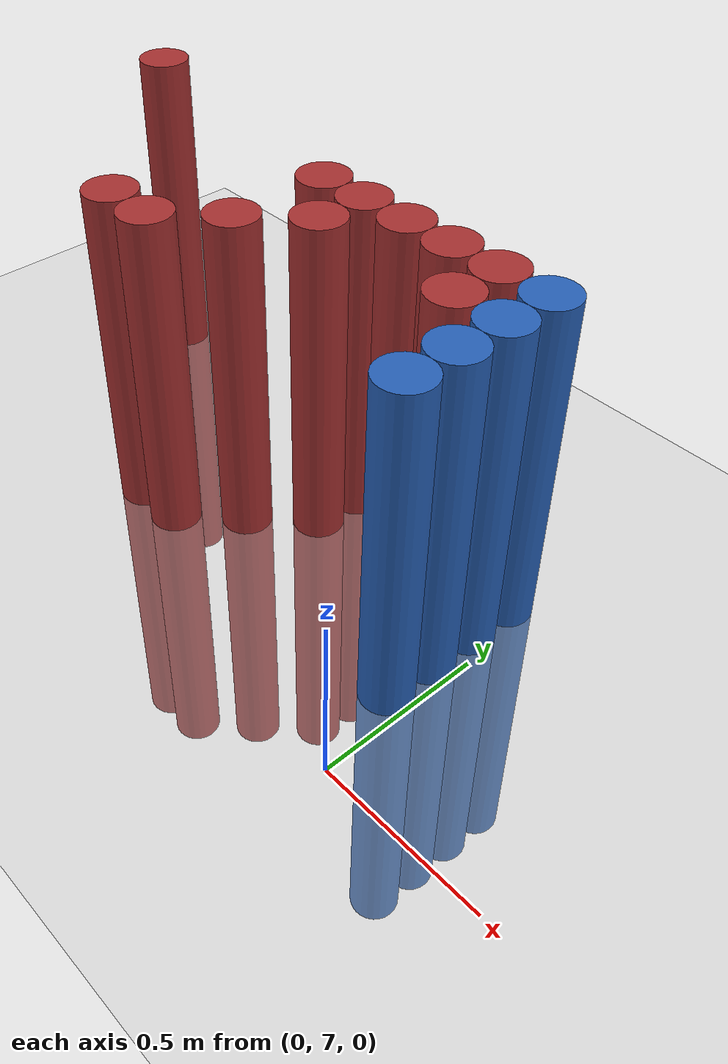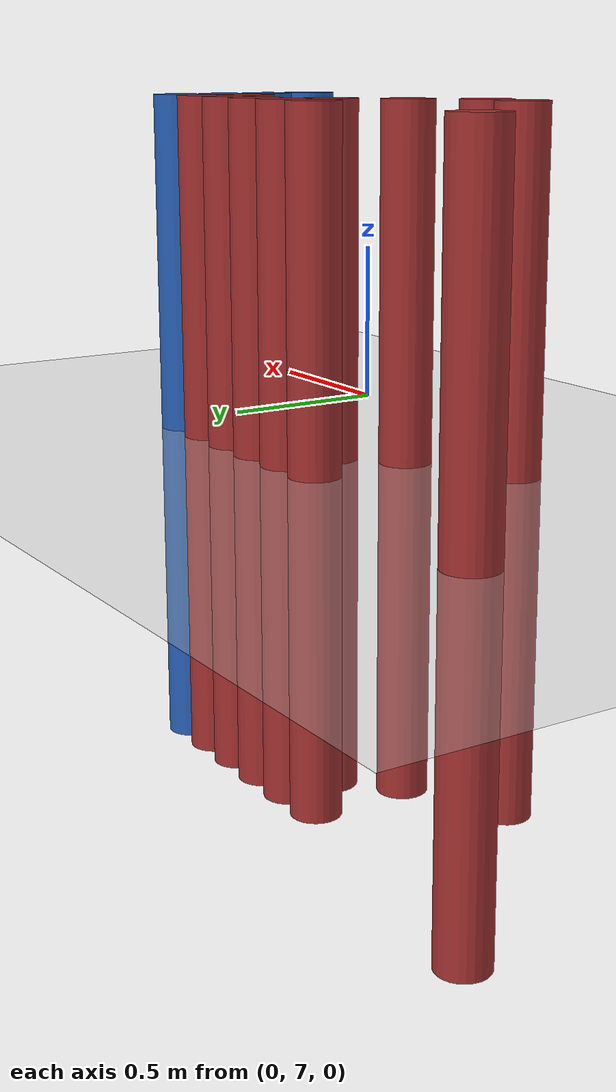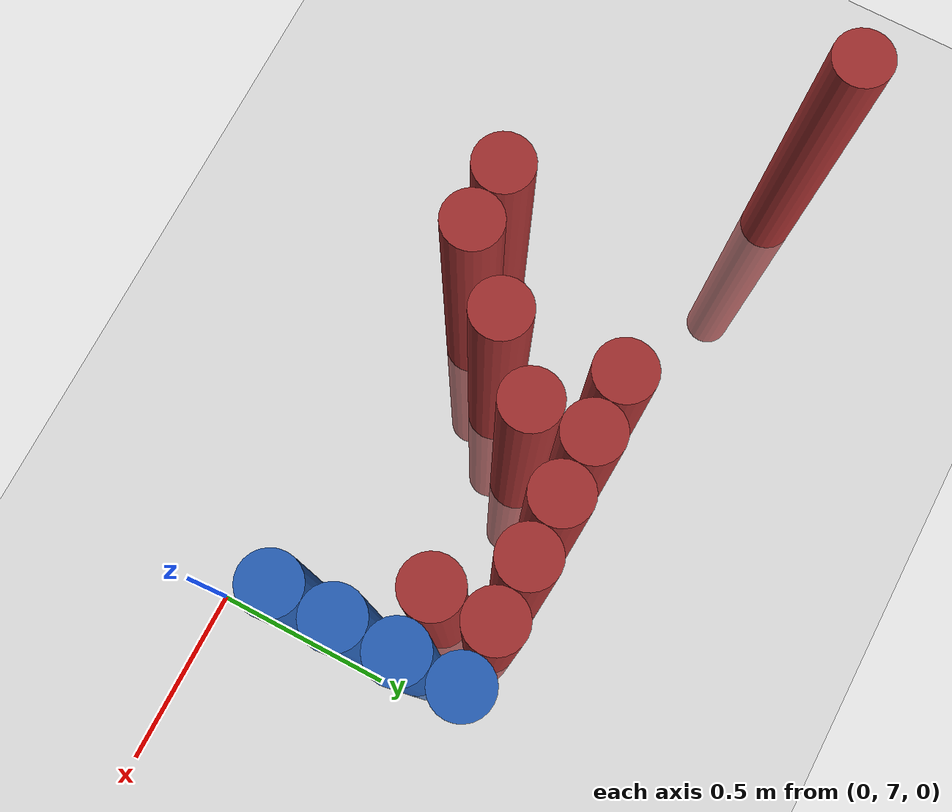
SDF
<sdf version="1.6">
 <world name="default">
  <model name="ground_plane">
   <static>1</static>
   <link name="link">
    <collision name="collision">
     <geometry><plane><normal>0 0 1</normal><size>100 100</size></plane></geometry>
     <surface><friction><ode><mu>100</mu><mu2>50</mu2></ode></friction></surface>
    </collision>
    <visual name="visual">
     <cast_shadows>0</cast_shadows>
     <geometry><plane><normal>0 0 1</normal><size>100 100</size></plane></geometry>
     <material>
      <script><uri>file://media/materials/scripts/gazebo.material</uri><name>Gazebo/Grey</name></script>
     </material>
    </visual>
   </link>
  </model>
  <model name="unit_cylinder_176">
   <static>1</static>
   <pose>-1.725000 7.875000 0.000000 0.000000 0.000000 0.000000</pose>
   <link name="link">
    <inertial>
     <mass>1</mass>
     <inertia><ixx>0.145833</ixx><ixy>0</ixy><ixz>0</ixz><iyy>0.145833</iyy><iyz>0</iyz><izz>0.125</izz></inertia>
    </inertial>
    <collision name="collision">
     <geometry><cylinder><radius>0.075000</radius><length>2</length></cylinder></geometry>
    </collision>
    <visual name="visual">
     <geometry><cylinder><radius>0.075000</radius><length>2</length></cylinder></geometry>
     <material>
      <ambient>0.648000 0.192000 0.192000 1</ambient>
      <diffuse>0.648000 0.192000 0.192000 1</diffuse>
     </material>
     <material>
      <script><name>Gazebo/Grey</name><uri>file://media/materials/scripts/gazebo.material</uri></script>
     </material>
    </visual>
   </link>
  </model>
  <model name="unit_cylinder_190">
   <static>1</static>
   <pose>-1.125000 7.275000 0.000000 0.000000 0.000000 0.000000</pose>
   <link name="link">
    <inertial>
     <mass>1</mass>
     <inertia><ixx>0.145833</ixx><ixy>0</ixy><ixz>0</ixz><iyy>0.145833</iyy><iyz>0</iyz><izz>0.125</izz></inertia>
    </inertial>
    <collision name="collision">
     <geometry><cylinder><radius>0.075000</radius><length>2</length></cylinder></geometry>
    </collision>
    <visual name="visual">
     <geometry><cylinder><radius>0.075000</radius><length>2</length></cylinder></geometry>
     <material>
      <ambient>0.648000 0.192000 0.192000 1</ambient>
      <diffuse>0.648000 0.192000 0.192000 1</diffuse>
     </material>
     <material>
      <script><name>Gazebo/Grey</name><uri>file://media/materials/scripts/gazebo.material</uri></script>
     </material>
    </visual>
   </link>
  </model>
  <model name="unit_cylinder_191">
   <static>1</static>
   <pose>-0.975000 7.275000 0.000000 0.000000 0.000000 0.000000</pose>
   <link name="link">
    <inertial>
     <mass>1</mass>
     <inertia><ixx>0.145833</ixx><ixy>0</ixy><ixz>0</ixz><iyy>0.145833</iyy><iyz>0</iyz><izz>0.125</izz></inertia>
    </inertial>
    <collision name="collision">
     <geometry><cylinder><radius>0.075000</radius><length>2</length></cylinder></geometry>
    </collision>
    <visual name="visual">
     <geometry><cylinder><radius>0.075000</radius><length>2</length></cylinder></geometry>
     <material>
      <ambient>0.648000 0.192000 0.192000 1</ambient>
      <diffuse>0.648000 0.192000 0.192000 1</diffuse>
     </material>
     <material>
      <script><name>Gazebo/Grey</name><uri>file://media/materials/scripts/gazebo.material</uri></script>
     </material>
    </visual>
   </link>
  </model>
  <model name="unit_cylinder_192">
   <static>1</static>
   <pose>-0.825000 7.425000 0.000000 0.000000 0.000000 0.000000</pose>
   <link name="link">
    <inertial>
     <mass>1</mass>
     <inertia><ixx>0.145833</ixx><ixy>0</ixy><ixz>0</ixz><iyy>0.145833</iyy><iyz>0</iyz><izz>0.125</izz></inertia>
    </inertial>
    <collision name="collision">
     <geometry><cylinder><radius>0.075000</radius><length>2</length></cylinder></geometry>
    </collision>
    <visual name="visual">
     <geometry><cylinder><radius>0.075000</radius><length>2</length></cylinder></geometry>
     <material>
      <ambient>0.648000 0.192000 0.192000 1</ambient>
      <diffuse>0.648000 0.192000 0.192000 1</diffuse>
     </material>
     <material>
      <script><name>Gazebo/Grey</name><uri>file://media/materials/scripts/gazebo.material</uri></script>
     </material>
    </visual>
   </link>
  </model>
  <model name="unit_cylinder_193">
   <static>1</static>
   <pose>-0.825000 7.725000 0.000000 0.000000 0.000000 0.000000</pose>
   <link name="link">
    <inertial>
     <mass>1</mass>
     <inertia><ixx>0.145833</ixx><ixy>0</ixy><ixz>0</ixz><iyy>0.145833</iyy><iyz>0</iyz><izz>0.125</izz></inertia>
    </inertial>
    <collision name="collision">
     <geometry><cylinder><radius>0.075000</radius><length>2</length></cylinder></geometry>
    </collision>
    <visual name="visual">
     <geometry><cylinder><radius>0.075000</radius><length>2</length></cylinder></geometry>
     <material>
      <ambient>0.648000 0.192000 0.192000 1</ambient>
      <diffuse>0.648000 0.192000 0.192000 1</diffuse>
     </material>
     <material>
      <script><name>Gazebo/Grey</name><uri>file://media/materials/scripts/gazebo.material</uri></script>
     </material>
    </visual>
   </link>
  </model>
  <model name="unit_cylinder_194">
   <static>1</static>
   <pose>-0.675000 7.575000 0.000000 0.000000 0.000000 0.000000</pose>
   <link name="link">
    <inertial>
     <mass>1</mass>
     <inertia><ixx>0.145833</ixx><ixy>0</ixy><ixz>0</ixz><iyy>0.145833</iyy><iyz>0</iyz><izz>0.125</izz></inertia>
    </inertial>
    <collision name="collision">
     <geometry><cylinder><radius>0.075000</radius><length>2</length></cylinder></geometry>
    </collision>
    <visual name="visual">
     <geometry><cylinder><radius>0.075000</radius><length>2</length></cylinder></geometry>
     <material>
      <ambient>0.648000 0.192000 0.192000 1</ambient>
      <diffuse>0.648000 0.192000 0.192000 1</diffuse>
     </material>
     <material>
      <script><name>Gazebo/Grey</name><uri>file://media/materials/scripts/gazebo.material</uri></script>
     </material>
    </visual>
   </link>
  </model>
  <model name="unit_cylinder_195">
   <static>1</static>
   <pose>-0.675000 7.725000 0.000000 0.000000 0.000000 0.000000</pose>
   <link name="link">
    <inertial>
     <mass>1</mass>
     <inertia><ixx>0.145833</ixx><ixy>0</ixy><ixz>0</ixz><iyy>0.145833</iyy><iyz>0</iyz><izz>0.125</izz></inertia>
    </inertial>
    <collision name="collision">
     <geometry><cylinder><radius>0.075000</radius><length>2</length></cylinder></geometry>
    </collision>
    <visual name="visual">
     <geometry><cylinder><radius>0.075000</radius><length>2</length></cylinder></geometry>
     <material>
      <ambient>0.648000 0.192000 0.192000 1</ambient>
      <diffuse>0.648000 0.192000 0.192000 1</diffuse>
     </material>
     <material>
      <script><name>Gazebo/Grey</name><uri>file://media/materials/scripts/gazebo.material</uri></script>
     </material>
    </visual>
   </link>
  </model>
  <model name="unit_cylinder_196">
   <static>1</static>
   <pose>-0.525000 7.725000 0.000000 0.000000 0.000000 0.000000</pose>
   <link name="link">
    <inertial>
     <mass>1</mass>
     <inertia><ixx>0.145833</ixx><ixy>0</ixy><ixz>0</ixz><iyy>0.145833</iyy><iyz>0</iyz><izz>0.125</izz></inertia>
    </inertial>
    <collision name="collision">
     <geometry><cylinder><radius>0.075000</radius><length>2</length></cylinder></geometry>
    </collision>
    <visual name="visual">
     <geometry><cylinder><radius>0.075000</radius><length>2</length></cylinder></geometry>
     <material>
      <ambient>0.648000 0.192000 0.192000 1</ambient>
      <diffuse>0.648000 0.192000 0.192000 1</diffuse>
     </material>
     <material>
      <script><name>Gazebo/Grey</name><uri>file://media/materials/scripts/gazebo.material</uri></script>
     </material>
    </visual>
   </link>
  </model>
  <model name="unit_cylinder_198">
   <static>1</static>
   <pose>-0.375000 7.725000 0.000000 0.000000 0.000000 0.000000</pose>
   <link name="link">
    <inertial>
     <mass>1</mass>
     <inertia><ixx>0.145833</ixx><ixy>0</ixy><ixz>0</ixz><iyy>0.145833</iyy><iyz>0</iyz><izz>0.125</izz></inertia>
    </inertial>
    <collision name="collision">
     <geometry><cylinder><radius>0.075000</radius><length>2</length></cylinder></geometry>
    </collision>
    <visual name="visual">
     <geometry><cylinder><radius>0.075000</radius><length>2</length></cylinder></geometry>
     <material>
      <ambient>0.648000 0.192000 0.192000 1</ambient>
      <diffuse>0.648000 0.192000 0.192000 1</diffuse>
     </material>
     <material>
      <script><name>Gazebo/Grey</name><uri>file://media/materials/scripts/gazebo.material</uri></script>
     </material>
    </visual>
   </link>
  </model>
  <model name="unit_cylinder_202">
   <static>1</static>
   <pose>-0.225000 7.575000 0.000000 0.000000 0.000000 0.000000</pose>
   <link name="link">
    <inertial>
     <mass>1</mass>
     <inertia><ixx>0.145833</ixx><ixy>0</ixy><ixz>0</ixz><iyy>0.145833</iyy><iyz>0</iyz><izz>0.125</izz></inertia>
    </inertial>
    <collision name="collision">
     <geometry><cylinder><radius>0.075000</radius><length>2</length></cylinder></geometry>
    </collision>
    <visual name="visual">
     <geometry><cylinder><radius>0.075000</radius><length>2</length></cylinder></geometry>
     <material>
      <ambient>0.648000 0.192000 0.192000 1</ambient>
      <diffuse>0.648000 0.192000 0.192000 1</diffuse>
     </material>
     <material>
      <script><name>Gazebo/Grey</name><uri>file://media/materials/scripts/gazebo.material</uri></script>
     </material>
    </visual>
   </link>
  </model>
  <model name="unit_cylinder_203">
   <static>1</static>
   <pose>-0.225000 7.725000 0.000000 0.000000 0.000000 0.000000</pose>
   <link name="link">
    <inertial>
     <mass>1</mass>
     <inertia><ixx>0.145833</ixx><ixy>0</ixy><ixz>0</ixz><iyy>0.145833</iyy><iyz>0</iyz><izz>0.125</izz></inertia>
    </inertial>
    <collision name="collision">
     <geometry><cylinder><radius>0.075000</radius><length>2</length></cylinder></geometry>
    </collision>
    <visual name="visual">
     <geometry><cylinder><radius>0.075000</radius><length>2</length></cylinder></geometry>
     <material>
      <ambient>0.648000 0.192000 0.192000 1</ambient>
      <diffuse>0.648000 0.192000 0.192000 1</diffuse>
     </material>
     <material>
      <script><name>Gazebo/Grey</name><uri>file://media/materials/scripts/gazebo.material</uri></script>
     </material>
    </visual>
   </link>
  </model>
  <model name="unit_cylinder_220">
   <static>1</static>
   <pose>-0.075000 7.275000 0.000000 0.000000 0.000000 0.000000</pose>
   <link name="link">
    <inertial>
     <mass>1</mass>
     <inertia><ixx>0.145833</ixx><ixy>0</ixy><ixz>0</ixz><iyy>0.145833</iyy><iyz>0</iyz><izz>0.125</izz></inertia>
    </inertial>
    <collision name="collision">
     <geometry><cylinder><radius>0.075000</radius><length>2</length></cylinder></geometry>
    </collision>
    <visual name="visual">
     <geometry><cylinder><radius>0.075000</radius><length>2</length></cylinder></geometry>
     <material>
      <ambient>0.152000 0.379000 0.720000 1</ambient>
      <diffuse>0.152000 0.379000 0.720000 1</diffuse>
     </material>
     <material>
      <script><name>Gazebo/Grey</name><uri>file://media/materials/scripts/gazebo.material</uri></script>
     </material>
    </visual>
   </link>
  </model>
  <model name="unit_cylinder_221">
   <static>1</static>
   <pose>-0.075000 7.425000 0.000000 0.000000 0.000000 0.000000</pose>
   <link name="link">
    <inertial>
     <mass>1</mass>
     <inertia><ixx>0.145833</ixx><ixy>0</ixy><ixz>0</ixz><iyy>0.145833</iyy><iyz>0</iyz><izz>0.125</izz></inertia>
    </inertial>
    <collision name="collision">
     <geometry><cylinder><radius>0.075000</radius><length>2</length></cylinder></geometry>
    </collision>
    <visual name="visual">
     <geometry><cylinder><radius>0.075000</radius><length>2</length></cylinder></geometry>
     <material>
      <ambient>0.152000 0.379000 0.720000 1</ambient>
      <diffuse>0.152000 0.379000 0.720000 1</diffuse>
     </material>
     <material>
      <script><name>Gazebo/Grey</name><uri>file://media/materials/scripts/gazebo.material</uri></script>
     </material>
    </visual>
   </link>
  </model>
  <model name="unit_cylinder_222">
   <static>1</static>
   <pose>-0.075000 7.575000 0.000000 0.000000 0.000000 0.000000</pose>
   <link name="link">
    <inertial>
     <mass>1</mass>
     <inertia><ixx>0.145833</ixx><ixy>0</ixy><ixz>0</ixz><iyy>0.145833</iyy><iyz>0</iyz><izz>0.125</izz></inertia>
    </inertial>
    <collision name="collision">
     <geometry><cylinder><radius>0.075000</radius><length>2</length></cylinder></geometry>
    </collision>
    <visual name="visual">
     <geometry><cylinder><radius>0.075000</radius><length>2</length></cylinder></geometry>
     <material>
      <ambient>0.152000 0.379000 0.720000 1</ambient>
      <diffuse>0.152000 0.379000 0.720000 1</diffuse>
     </material>
     <material>
      <script><name>Gazebo/Grey</name><uri>file://media/materials/scripts/gazebo.material</uri></script>
     </material>
    </visual>
   </link>
  </model>
  <model name="unit_cylinder_223">
   <static>1</static>
   <pose>-0.075000 7.725000 0.000000 0.000000 0.000000 0.000000</pose>
   <link name="link">
    <inertial>
     <mass>1</mass>
     <inertia><ixx>0.145833</ixx><ixy>0</ixy><ixz>0</ixz><iyy>0.145833</iyy><iyz>0</iyz><izz>0.125</izz></inertia>
    </inertial>
    <collision name="collision">
     <geometry><cylinder><radius>0.075000</radius><length>2</length></cylinder></geometry>
    </collision>
    <visual name="visual">
     <geometry><cylinder><radius>0.075000</radius><length>2</length></cylinder></geometry>
     <material>
      <ambient>0.152000 0.379000 0.720000 1</ambient>
      <diffuse>0.152000 0.379000 0.720000 1</diffuse>
     </material>
     <material>
      <script><name>Gazebo/Grey</name><uri>file://media/materials/scripts/gazebo.material</uri></script>
     </material>
    </visual>
   </link>
  </model>
 </world>
</sdf>
